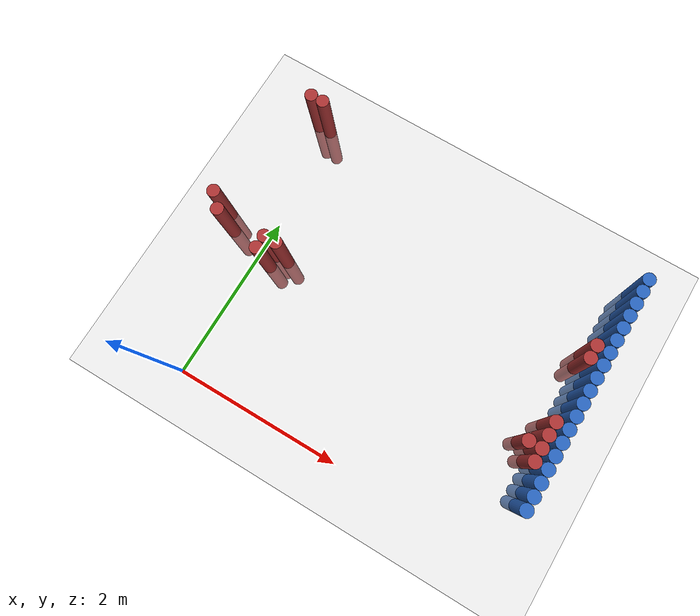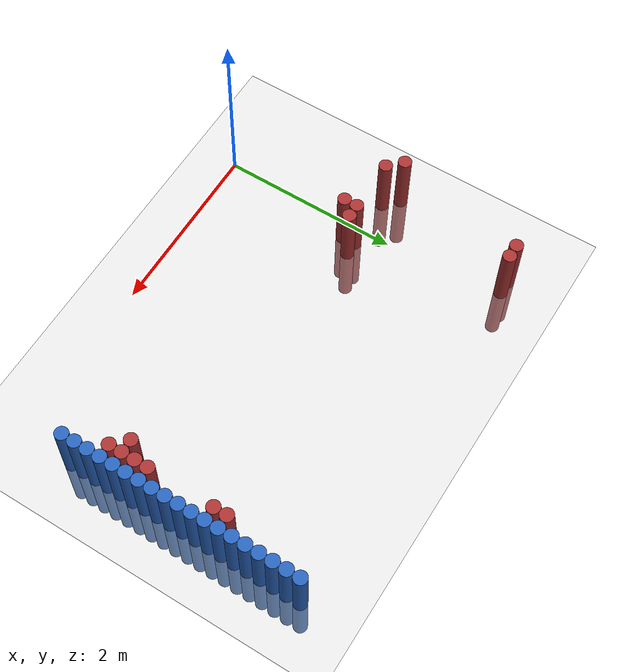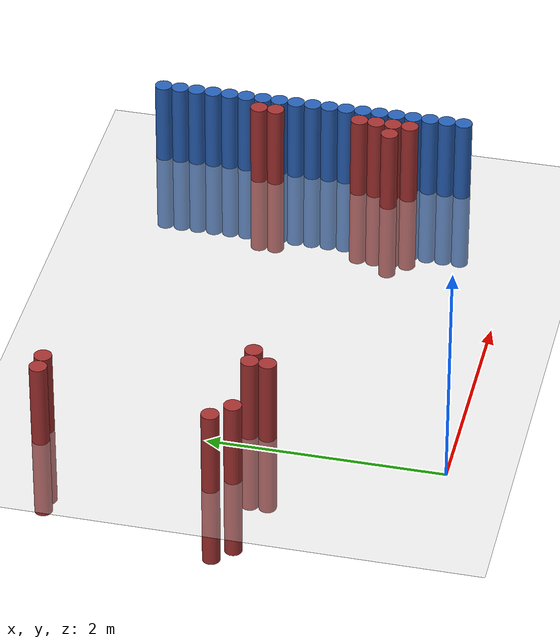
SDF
<sdf version="1.6">
 <world name="default">
  <model name="ground_plane">
   <static>1</static>
   <link name="link">
    <collision name="collision">
     <geometry><plane><normal>0 0 1</normal><size>100 100</size></plane></geometry>
     <surface><friction><ode><mu>100</mu><mu2>50</mu2></ode></friction></surface>
    </collision>
    <visual name="visual">
     <cast_shadows>0</cast_shadows>
     <geometry><plane><normal>0 0 1</normal><size>100 100</size></plane></geometry>
     <material>
      <script><uri>file://media/materials/scripts/gazebo.material</uri><name>Gazebo/Grey</name></script>
     </material>
    </visual>
   </link>
  </model>
  <model name="unit_cylinder_124">
   <static>1</static>
   <pose>3.925000 0.775000 0.000000 0.000000 0.000000 0.000000</pose>
   <link name="link">
    <inertial>
     <mass>1</mass>
     <inertia><ixx>0.145833</ixx><ixy>0</ixy><ixz>0</ixz><iyy>0.145833</iyy><iyz>0</iyz><izz>0.125</izz></inertia>
    </inertial>
    <collision name="collision">
     <geometry><cylinder><radius>0.075000</radius><length>1.5</length></cylinder></geometry>
    </collision>
    <visual name="visual">
     <geometry><cylinder><radius>0.075000</radius><length>1.5</length></cylinder></geometry>
     <material>
      <ambient>0.152000 0.379000 0.720000 1</ambient>
      <diffuse>0.152000 0.379000 0.720000 1</diffuse>
     </material>
     <material>
      <script><name>Gazebo/Grey</name><uri>file://media/materials/scripts/gazebo.material</uri></script>
     </material>
    </visual>
   </link>
  </model>
  <model name="unit_cylinder_126">
   <static>1</static>
   <pose>3.925000 0.925000 0.000000 0.000000 0.000000 0.000000</pose>
   <link name="link">
    <inertial>
     <mass>1</mass>
     <inertia><ixx>0.145833</ixx><ixy>0</ixy><ixz>0</ixz><iyy>0.145833</iyy><iyz>0</iyz><izz>0.125</izz></inertia>
    </inertial>
    <collision name="collision">
     <geometry><cylinder><radius>0.075000</radius><length>1.5</length></cylinder></geometry>
    </collision>
    <visual name="visual">
     <geometry><cylinder><radius>0.075000</radius><length>1.5</length></cylinder></geometry>
     <material>
      <ambient>0.152000 0.379000 0.720000 1</ambient>
      <diffuse>0.152000 0.379000 0.720000 1</diffuse>
     </material>
     <material>
      <script><name>Gazebo/Grey</name><uri>file://media/materials/scripts/gazebo.material</uri></script>
     </material>
    </visual>
   </link>
  </model>
  <model name="unit_cylinder_128">
   <static>1</static>
   <pose>3.925000 1.075000 0.000000 0.000000 0.000000 0.000000</pose>
   <link name="link">
    <inertial>
     <mass>1</mass>
     <inertia><ixx>0.145833</ixx><ixy>0</ixy><ixz>0</ixz><iyy>0.145833</iyy><iyz>0</iyz><izz>0.125</izz></inertia>
    </inertial>
    <collision name="collision">
     <geometry><cylinder><radius>0.075000</radius><length>1.5</length></cylinder></geometry>
    </collision>
    <visual name="visual">
     <geometry><cylinder><radius>0.075000</radius><length>1.5</length></cylinder></geometry>
     <material>
      <ambient>0.152000 0.379000 0.720000 1</ambient>
      <diffuse>0.152000 0.379000 0.720000 1</diffuse>
     </material>
     <material>
      <script><name>Gazebo/Grey</name><uri>file://media/materials/scripts/gazebo.material</uri></script>
     </material>
    </visual>
   </link>
  </model>
  <model name="unit_cylinder_130">
   <static>1</static>
   <pose>3.925000 1.225000 0.000000 0.000000 0.000000 0.000000</pose>
   <link name="link">
    <inertial>
     <mass>1</mass>
     <inertia><ixx>0.145833</ixx><ixy>0</ixy><ixz>0</ixz><iyy>0.145833</iyy><iyz>0</iyz><izz>0.125</izz></inertia>
    </inertial>
    <collision name="collision">
     <geometry><cylinder><radius>0.075000</radius><length>1.5</length></cylinder></geometry>
    </collision>
    <visual name="visual">
     <geometry><cylinder><radius>0.075000</radius><length>1.5</length></cylinder></geometry>
     <material>
      <ambient>0.152000 0.379000 0.720000 1</ambient>
      <diffuse>0.152000 0.379000 0.720000 1</diffuse>
     </material>
     <material>
      <script><name>Gazebo/Grey</name><uri>file://media/materials/scripts/gazebo.material</uri></script>
     </material>
    </visual>
   </link>
  </model>
  <model name="unit_cylinder_132">
   <static>1</static>
   <pose>3.925000 1.375000 0.000000 0.000000 0.000000 0.000000</pose>
   <link name="link">
    <inertial>
     <mass>1</mass>
     <inertia><ixx>0.145833</ixx><ixy>0</ixy><ixz>0</ixz><iyy>0.145833</iyy><iyz>0</iyz><izz>0.125</izz></inertia>
    </inertial>
    <collision name="collision">
     <geometry><cylinder><radius>0.075000</radius><length>1.5</length></cylinder></geometry>
    </collision>
    <visual name="visual">
     <geometry><cylinder><radius>0.075000</radius><length>1.5</length></cylinder></geometry>
     <material>
      <ambient>0.152000 0.379000 0.720000 1</ambient>
      <diffuse>0.152000 0.379000 0.720000 1</diffuse>
     </material>
     <material>
      <script><name>Gazebo/Grey</name><uri>file://media/materials/scripts/gazebo.material</uri></script>
     </material>
    </visual>
   </link>
  </model>
  <model name="unit_cylinder_134">
   <static>1</static>
   <pose>3.925000 1.525000 0.000000 0.000000 0.000000 0.000000</pose>
   <link name="link">
    <inertial>
     <mass>1</mass>
     <inertia><ixx>0.145833</ixx><ixy>0</ixy><ixz>0</ixz><iyy>0.145833</iyy><iyz>0</iyz><izz>0.125</izz></inertia>
    </inertial>
    <collision name="collision">
     <geometry><cylinder><radius>0.075000</radius><length>1.5</length></cylinder></geometry>
    </collision>
    <visual name="visual">
     <geometry><cylinder><radius>0.075000</radius><length>1.5</length></cylinder></geometry>
     <material>
      <ambient>0.152000 0.379000 0.720000 1</ambient>
      <diffuse>0.152000 0.379000 0.720000 1</diffuse>
     </material>
     <material>
      <script><name>Gazebo/Grey</name><uri>file://media/materials/scripts/gazebo.material</uri></script>
     </material>
    </visual>
   </link>
  </model>
  <model name="unit_cylinder_136">
   <static>1</static>
   <pose>3.925000 1.675000 0.000000 0.000000 0.000000 0.000000</pose>
   <link name="link">
    <inertial>
     <mass>1</mass>
     <inertia><ixx>0.145833</ixx><ixy>0</ixy><ixz>0</ixz><iyy>0.145833</iyy><iyz>0</iyz><izz>0.125</izz></inertia>
    </inertial>
    <collision name="collision">
     <geometry><cylinder><radius>0.075000</radius><length>1.5</length></cylinder></geometry>
    </collision>
    <visual name="visual">
     <geometry><cylinder><radius>0.075000</radius><length>1.5</length></cylinder></geometry>
     <material>
      <ambient>0.152000 0.379000 0.720000 1</ambient>
      <diffuse>0.152000 0.379000 0.720000 1</diffuse>
     </material>
     <material>
      <script><name>Gazebo/Grey</name><uri>file://media/materials/scripts/gazebo.material</uri></script>
     </material>
    </visual>
   </link>
  </model>
  <model name="unit_cylinder_138">
   <static>1</static>
   <pose>3.925000 1.825000 0.000000 0.000000 0.000000 0.000000</pose>
   <link name="link">
    <inertial>
     <mass>1</mass>
     <inertia><ixx>0.145833</ixx><ixy>0</ixy><ixz>0</ixz><iyy>0.145833</iyy><iyz>0</iyz><izz>0.125</izz></inertia>
    </inertial>
    <collision name="collision">
     <geometry><cylinder><radius>0.075000</radius><length>1.5</length></cylinder></geometry>
    </collision>
    <visual name="visual">
     <geometry><cylinder><radius>0.075000</radius><length>1.5</length></cylinder></geometry>
     <material>
      <ambient>0.152000 0.379000 0.720000 1</ambient>
      <diffuse>0.152000 0.379000 0.720000 1</diffuse>
     </material>
     <material>
      <script><name>Gazebo/Grey</name><uri>file://media/materials/scripts/gazebo.material</uri></script>
     </material>
    </visual>
   </link>
  </model>
  <model name="unit_cylinder_140">
   <static>1</static>
   <pose>3.925000 1.975000 0.000000 0.000000 0.000000 0.000000</pose>
   <link name="link">
    <inertial>
     <mass>1</mass>
     <inertia><ixx>0.145833</ixx><ixy>0</ixy><ixz>0</ixz><iyy>0.145833</iyy><iyz>0</iyz><izz>0.125</izz></inertia>
    </inertial>
    <collision name="collision">
     <geometry><cylinder><radius>0.075000</radius><length>1.5</length></cylinder></geometry>
    </collision>
    <visual name="visual">
     <geometry><cylinder><radius>0.075000</radius><length>1.5</length></cylinder></geometry>
     <material>
      <ambient>0.152000 0.379000 0.720000 1</ambient>
      <diffuse>0.152000 0.379000 0.720000 1</diffuse>
     </material>
     <material>
      <script><name>Gazebo/Grey</name><uri>file://media/materials/scripts/gazebo.material</uri></script>
     </material>
    </visual>
   </link>
  </model>
  <model name="unit_cylinder_142">
   <static>1</static>
   <pose>3.925000 2.125000 0.000000 0.000000 0.000000 0.000000</pose>
   <link name="link">
    <inertial>
     <mass>1</mass>
     <inertia><ixx>0.145833</ixx><ixy>0</ixy><ixz>0</ixz><iyy>0.145833</iyy><iyz>0</iyz><izz>0.125</izz></inertia>
    </inertial>
    <collision name="collision">
     <geometry><cylinder><radius>0.075000</radius><length>1.5</length></cylinder></geometry>
    </collision>
    <visual name="visual">
     <geometry><cylinder><radius>0.075000</radius><length>1.5</length></cylinder></geometry>
     <material>
      <ambient>0.152000 0.379000 0.720000 1</ambient>
      <diffuse>0.152000 0.379000 0.720000 1</diffuse>
     </material>
     <material>
      <script><name>Gazebo/Grey</name><uri>file://media/materials/scripts/gazebo.material</uri></script>
     </material>
    </visual>
   </link>
  </model>
  <model name="unit_cylinder_144">
   <static>1</static>
   <pose>3.925000 2.275000 0.000000 0.000000 0.000000 0.000000</pose>
   <link name="link">
    <inertial>
     <mass>1</mass>
     <inertia><ixx>0.145833</ixx><ixy>0</ixy><ixz>0</ixz><iyy>0.145833</iyy><iyz>0</iyz><izz>0.125</izz></inertia>
    </inertial>
    <collision name="collision">
     <geometry><cylinder><radius>0.075000</radius><length>1.5</length></cylinder></geometry>
    </collision>
    <visual name="visual">
     <geometry><cylinder><radius>0.075000</radius><length>1.5</length></cylinder></geometry>
     <material>
      <ambient>0.152000 0.379000 0.720000 1</ambient>
      <diffuse>0.152000 0.379000 0.720000 1</diffuse>
     </material>
     <material>
      <script><name>Gazebo/Grey</name><uri>file://media/materials/scripts/gazebo.material</uri></script>
     </material>
    </visual>
   </link>
  </model>
  <model name="unit_cylinder_146">
   <static>1</static>
   <pose>3.925000 2.425000 0.000000 0.000000 0.000000 0.000000</pose>
   <link name="link">
    <inertial>
     <mass>1</mass>
     <inertia><ixx>0.145833</ixx><ixy>0</ixy><ixz>0</ixz><iyy>0.145833</iyy><iyz>0</iyz><izz>0.125</izz></inertia>
    </inertial>
    <collision name="collision">
     <geometry><cylinder><radius>0.075000</radius><length>1.5</length></cylinder></geometry>
    </collision>
    <visual name="visual">
     <geometry><cylinder><radius>0.075000</radius><length>1.5</length></cylinder></geometry>
     <material>
      <ambient>0.152000 0.379000 0.720000 1</ambient>
      <diffuse>0.152000 0.379000 0.720000 1</diffuse>
     </material>
     <material>
      <script><name>Gazebo/Grey</name><uri>file://media/materials/scripts/gazebo.material</uri></script>
     </material>
    </visual>
   </link>
  </model>
  <model name="unit_cylinder_148">
   <static>1</static>
   <pose>3.925000 2.575000 0.000000 0.000000 0.000000 0.000000</pose>
   <link name="link">
    <inertial>
     <mass>1</mass>
     <inertia><ixx>0.145833</ixx><ixy>0</ixy><ixz>0</ixz><iyy>0.145833</iyy><iyz>0</iyz><izz>0.125</izz></inertia>
    </inertial>
    <collision name="collision">
     <geometry><cylinder><radius>0.075000</radius><length>1.5</length></cylinder></geometry>
    </collision>
    <visual name="visual">
     <geometry><cylinder><radius>0.075000</radius><length>1.5</length></cylinder></geometry>
     <material>
      <ambient>0.152000 0.379000 0.720000 1</ambient>
      <diffuse>0.152000 0.379000 0.720000 1</diffuse>
     </material>
     <material>
      <script><name>Gazebo/Grey</name><uri>file://media/materials/scripts/gazebo.material</uri></script>
     </material>
    </visual>
   </link>
  </model>
  <model name="unit_cylinder_150">
   <static>1</static>
   <pose>3.925000 2.725000 0.000000 0.000000 0.000000 0.000000</pose>
   <link name="link">
    <inertial>
     <mass>1</mass>
     <inertia><ixx>0.145833</ixx><ixy>0</ixy><ixz>0</ixz><iyy>0.145833</iyy><iyz>0</iyz><izz>0.125</izz></inertia>
    </inertial>
    <collision name="collision">
     <geometry><cylinder><radius>0.075000</radius><length>1.5</length></cylinder></geometry>
    </collision>
    <visual name="visual">
     <geometry><cylinder><radius>0.075000</radius><length>1.5</length></cylinder></geometry>
     <material>
      <ambient>0.152000 0.379000 0.720000 1</ambient>
      <diffuse>0.152000 0.379000 0.720000 1</diffuse>
     </material>
     <material>
      <script><name>Gazebo/Grey</name><uri>file://media/materials/scripts/gazebo.material</uri></script>
     </material>
    </visual>
   </link>
  </model>
  <model name="unit_cylinder_152">
   <static>1</static>
   <pose>3.925000 2.875000 0.000000 0.000000 0.000000 0.000000</pose>
   <link name="link">
    <inertial>
     <mass>1</mass>
     <inertia><ixx>0.145833</ixx><ixy>0</ixy><ixz>0</ixz><iyy>0.145833</iyy><iyz>0</iyz><izz>0.125</izz></inertia>
    </inertial>
    <collision name="collision">
     <geometry><cylinder><radius>0.075000</radius><length>1.5</length></cylinder></geometry>
    </collision>
    <visual name="visual">
     <geometry><cylinder><radius>0.075000</radius><length>1.5</length></cylinder></geometry>
     <material>
      <ambient>0.152000 0.379000 0.720000 1</ambient>
      <diffuse>0.152000 0.379000 0.720000 1</diffuse>
     </material>
     <material>
      <script><name>Gazebo/Grey</name><uri>file://media/materials/scripts/gazebo.material</uri></script>
     </material>
    </visual>
   </link>
  </model>
  <model name="unit_cylinder_154">
   <static>1</static>
   <pose>3.925000 3.025000 0.000000 0.000000 0.000000 0.000000</pose>
   <link name="link">
    <inertial>
     <mass>1</mass>
     <inertia><ixx>0.145833</ixx><ixy>0</ixy><ixz>0</ixz><iyy>0.145833</iyy><iyz>0</iyz><izz>0.125</izz></inertia>
    </inertial>
    <collision name="collision">
     <geometry><cylinder><radius>0.075000</radius><length>1.5</length></cylinder></geometry>
    </collision>
    <visual name="visual">
     <geometry><cylinder><radius>0.075000</radius><length>1.5</length></cylinder></geometry>
     <material>
      <ambient>0.152000 0.379000 0.720000 1</ambient>
      <diffuse>0.152000 0.379000 0.720000 1</diffuse>
     </material>
     <material>
      <script><name>Gazebo/Grey</name><uri>file://media/materials/scripts/gazebo.material</uri></script>
     </material>
    </visual>
   </link>
  </model>
  <model name="unit_cylinder_156">
   <static>1</static>
   <pose>3.925000 3.175000 0.000000 0.000000 0.000000 0.000000</pose>
   <link name="link">
    <inertial>
     <mass>1</mass>
     <inertia><ixx>0.145833</ixx><ixy>0</ixy><ixz>0</ixz><iyy>0.145833</iyy><iyz>0</iyz><izz>0.125</izz></inertia>
    </inertial>
    <collision name="collision">
     <geometry><cylinder><radius>0.075000</radius><length>1.5</length></cylinder></geometry>
    </collision>
    <visual name="visual">
     <geometry><cylinder><radius>0.075000</radius><length>1.5</length></cylinder></geometry>
     <material>
      <ambient>0.152000 0.379000 0.720000 1</ambient>
      <diffuse>0.152000 0.379000 0.720000 1</diffuse>
     </material>
     <material>
      <script><name>Gazebo/Grey</name><uri>file://media/materials/scripts/gazebo.material</uri></script>
     </material>
    </visual>
   </link>
  </model>
  <model name="unit_cylinder_158">
   <static>1</static>
   <pose>3.925000 3.325000 0.000000 0.000000 0.000000 0.000000</pose>
   <link name="link">
    <inertial>
     <mass>1</mass>
     <inertia><ixx>0.145833</ixx><ixy>0</ixy><ixz>0</ixz><iyy>0.145833</iyy><iyz>0</iyz><izz>0.125</izz></inertia>
    </inertial>
    <collision name="collision">
     <geometry><cylinder><radius>0.075000</radius><length>1.5</length></cylinder></geometry>
    </collision>
    <visual name="visual">
     <geometry><cylinder><radius>0.075000</radius><length>1.5</length></cylinder></geometry>
     <material>
      <ambient>0.152000 0.379000 0.720000 1</ambient>
      <diffuse>0.152000 0.379000 0.720000 1</diffuse>
     </material>
     <material>
      <script><name>Gazebo/Grey</name><uri>file://media/materials/scripts/gazebo.material</uri></script>
     </material>
    </visual>
   </link>
  </model>
  <model name="unit_cylinder_301">
   <static>1</static>
   <pose>-0.575000 1.825000 0.000000 0.000000 0.000000 0.000000</pose>
   <link name="link">
    <inertial>
     <mass>1</mass>
     <inertia><ixx>0.145833</ixx><ixy>0</ixy><ixz>0</ixz><iyy>0.145833</iyy><iyz>0</iyz><izz>0.125</izz></inertia>
    </inertial>
    <collision name="collision">
     <geometry><cylinder><radius>0.075000</radius><length>1.5</length></cylinder></geometry>
    </collision>
    <visual name="visual">
     <geometry><cylinder><radius>0.075000</radius><length>1.5</length></cylinder></geometry>
     <material>
      <ambient>0.648000 0.192000 0.192000 1</ambient>
      <diffuse>0.648000 0.192000 0.192000 1</diffuse>
     </material>
     <material>
      <script><name>Gazebo/Grey</name><uri>file://media/materials/scripts/gazebo.material</uri></script>
     </material>
    </visual>
   </link>
  </model>
  <model name="unit_cylinder_302">
   <static>1</static>
   <pose>-0.425000 1.675000 0.000000 0.000000 0.000000 0.000000</pose>
   <link name="link">
    <inertial>
     <mass>1</mass>
     <inertia><ixx>0.145833</ixx><ixy>0</ixy><ixz>0</ixz><iyy>0.145833</iyy><iyz>0</iyz><izz>0.125</izz></inertia>
    </inertial>
    <collision name="collision">
     <geometry><cylinder><radius>0.075000</radius><length>1.5</length></cylinder></geometry>
    </collision>
    <visual name="visual">
     <geometry><cylinder><radius>0.075000</radius><length>1.5</length></cylinder></geometry>
     <material>
      <ambient>0.648000 0.192000 0.192000 1</ambient>
      <diffuse>0.648000 0.192000 0.192000 1</diffuse>
     </material>
     <material>
      <script><name>Gazebo/Grey</name><uri>file://media/materials/scripts/gazebo.material</uri></script>
     </material>
    </visual>
   </link>
  </model>
  <model name="unit_cylinder_303">
   <static>1</static>
   <pose>-0.275000 3.325000 0.000000 0.000000 0.000000 0.000000</pose>
   <link name="link">
    <inertial>
     <mass>1</mass>
     <inertia><ixx>0.145833</ixx><ixy>0</ixy><ixz>0</ixz><iyy>0.145833</iyy><iyz>0</iyz><izz>0.125</izz></inertia>
    </inertial>
    <collision name="collision">
     <geometry><cylinder><radius>0.075000</radius><length>1.5</length></cylinder></geometry>
    </collision>
    <visual name="visual">
     <geometry><cylinder><radius>0.075000</radius><length>1.5</length></cylinder></geometry>
     <material>
      <ambient>0.648000 0.192000 0.192000 1</ambient>
      <diffuse>0.648000 0.192000 0.192000 1</diffuse>
     </material>
     <material>
      <script><name>Gazebo/Grey</name><uri>file://media/materials/scripts/gazebo.material</uri></script>
     </material>
    </visual>
   </link>
  </model>
  <model name="unit_cylinder_305">
   <static>1</static>
   <pose>-0.125000 3.325000 0.000000 0.000000 0.000000 0.000000</pose>
   <link name="link">
    <inertial>
     <mass>1</mass>
     <inertia><ixx>0.145833</ixx><ixy>0</ixy><ixz>0</ixz><iyy>0.145833</iyy><iyz>0</iyz><izz>0.125</izz></inertia>
    </inertial>
    <collision name="collision">
     <geometry><cylinder><radius>0.075000</radius><length>1.5</length></cylinder></geometry>
    </collision>
    <visual name="visual">
     <geometry><cylinder><radius>0.075000</radius><length>1.5</length></cylinder></geometry>
     <material>
      <ambient>0.648000 0.192000 0.192000 1</ambient>
      <diffuse>0.648000 0.192000 0.192000 1</diffuse>
     </material>
     <material>
      <script><name>Gazebo/Grey</name><uri>file://media/materials/scripts/gazebo.material</uri></script>
     </material>
    </visual>
   </link>
  </model>
  <model name="unit_cylinder_310">
   <static>1</static>
   <pose>0.175000 1.525000 0.000000 0.000000 0.000000 0.000000</pose>
   <link name="link">
    <inertial>
     <mass>1</mass>
     <inertia><ixx>0.145833</ixx><ixy>0</ixy><ixz>0</ixz><iyy>0.145833</iyy><iyz>0</iyz><izz>0.125</izz></inertia>
    </inertial>
    <collision name="collision">
     <geometry><cylinder><radius>0.075000</radius><length>1.5</length></cylinder></geometry>
    </collision>
    <visual name="visual">
     <geometry><cylinder><radius>0.075000</radius><length>1.5</length></cylinder></geometry>
     <material>
      <ambient>0.648000 0.192000 0.192000 1</ambient>
      <diffuse>0.648000 0.192000 0.192000 1</diffuse>
     </material>
     <material>
      <script><name>Gazebo/Grey</name><uri>file://media/materials/scripts/gazebo.material</uri></script>
     </material>
    </visual>
   </link>
  </model>
  <model name="unit_cylinder_311">
   <static>1</static>
   <pose>0.175000 1.675000 0.000000 0.000000 0.000000 0.000000</pose>
   <link name="link">
    <inertial>
     <mass>1</mass>
     <inertia><ixx>0.145833</ixx><ixy>0</ixy><ixz>0</ixz><iyy>0.145833</iyy><iyz>0</iyz><izz>0.125</izz></inertia>
    </inertial>
    <collision name="collision">
     <geometry><cylinder><radius>0.075000</radius><length>1.5</length></cylinder></geometry>
    </collision>
    <visual name="visual">
     <geometry><cylinder><radius>0.075000</radius><length>1.5</length></cylinder></geometry>
     <material>
      <ambient>0.648000 0.192000 0.192000 1</ambient>
      <diffuse>0.648000 0.192000 0.192000 1</diffuse>
     </material>
     <material>
      <script><name>Gazebo/Grey</name><uri>file://media/materials/scripts/gazebo.material</uri></script>
     </material>
    </visual>
   </link>
  </model>
  <model name="unit_cylinder_312">
   <static>1</static>
   <pose>0.325000 1.675000 0.000000 0.000000 0.000000 0.000000</pose>
   <link name="link">
    <inertial>
     <mass>1</mass>
     <inertia><ixx>0.145833</ixx><ixy>0</ixy><ixz>0</ixz><iyy>0.145833</iyy><iyz>0</iyz><izz>0.125</izz></inertia>
    </inertial>
    <collision name="collision">
     <geometry><cylinder><radius>0.075000</radius><length>1.5</length></cylinder></geometry>
    </collision>
    <visual name="visual">
     <geometry><cylinder><radius>0.075000</radius><length>1.5</length></cylinder></geometry>
     <material>
      <ambient>0.648000 0.192000 0.192000 1</ambient>
      <diffuse>0.648000 0.192000 0.192000 1</diffuse>
     </material>
     <material>
      <script><name>Gazebo/Grey</name><uri>file://media/materials/scripts/gazebo.material</uri></script>
     </material>
    </visual>
   </link>
  </model>
  <model name="unit_cylinder_327">
   <static>1</static>
   <pose>3.625000 1.225000 0.000000 0.000000 0.000000 0.000000</pose>
   <link name="link">
    <inertial>
     <mass>1</mass>
     <inertia><ixx>0.145833</ixx><ixy>0</ixy><ixz>0</ixz><iyy>0.145833</iyy><iyz>0</iyz><izz>0.125</izz></inertia>
    </inertial>
    <collision name="collision">
     <geometry><cylinder><radius>0.075000</radius><length>1.5</length></cylinder></geometry>
    </collision>
    <visual name="visual">
     <geometry><cylinder><radius>0.075000</radius><length>1.5</length></cylinder></geometry>
     <material>
      <ambient>0.648000 0.192000 0.192000 1</ambient>
      <diffuse>0.648000 0.192000 0.192000 1</diffuse>
     </material>
     <material>
      <script><name>Gazebo/Grey</name><uri>file://media/materials/scripts/gazebo.material</uri></script>
     </material>
    </visual>
   </link>
  </model>
  <model name="unit_cylinder_338">
   <static>1</static>
   <pose>3.775000 1.075000 0.000000 0.000000 0.000000 0.000000</pose>
   <link name="link">
    <inertial>
     <mass>1</mass>
     <inertia><ixx>0.145833</ixx><ixy>0</ixy><ixz>0</ixz><iyy>0.145833</iyy><iyz>0</iyz><izz>0.125</izz></inertia>
    </inertial>
    <collision name="collision">
     <geometry><cylinder><radius>0.075000</radius><length>1.5</length></cylinder></geometry>
    </collision>
    <visual name="visual">
     <geometry><cylinder><radius>0.075000</radius><length>1.5</length></cylinder></geometry>
     <material>
      <ambient>0.648000 0.192000 0.192000 1</ambient>
      <diffuse>0.648000 0.192000 0.192000 1</diffuse>
     </material>
     <material>
      <script><name>Gazebo/Grey</name><uri>file://media/materials/scripts/gazebo.material</uri></script>
     </material>
    </visual>
   </link>
  </model>
  <model name="unit_cylinder_339">
   <static>1</static>
   <pose>3.775000 1.225000 0.000000 0.000000 0.000000 0.000000</pose>
   <link name="link">
    <inertial>
     <mass>1</mass>
     <inertia><ixx>0.145833</ixx><ixy>0</ixy><ixz>0</ixz><iyy>0.145833</iyy><iyz>0</iyz><izz>0.125</izz></inertia>
    </inertial>
    <collision name="collision">
     <geometry><cylinder><radius>0.075000</radius><length>1.5</length></cylinder></geometry>
    </collision>
    <visual name="visual">
     <geometry><cylinder><radius>0.075000</radius><length>1.5</length></cylinder></geometry>
     <material>
      <ambient>0.648000 0.192000 0.192000 1</ambient>
      <diffuse>0.648000 0.192000 0.192000 1</diffuse>
     </material>
     <material>
      <script><name>Gazebo/Grey</name><uri>file://media/materials/scripts/gazebo.material</uri></script>
     </material>
    </visual>
   </link>
  </model>
  <model name="unit_cylinder_340">
   <static>1</static>
   <pose>3.775000 1.375000 0.000000 0.000000 0.000000 0.000000</pose>
   <link name="link">
    <inertial>
     <mass>1</mass>
     <inertia><ixx>0.145833</ixx><ixy>0</ixy><ixz>0</ixz><iyy>0.145833</iyy><iyz>0</iyz><izz>0.125</izz></inertia>
    </inertial>
    <collision name="collision">
     <geometry><cylinder><radius>0.075000</radius><length>1.5</length></cylinder></geometry>
    </collision>
    <visual name="visual">
     <geometry><cylinder><radius>0.075000</radius><length>1.5</length></cylinder></geometry>
     <material>
      <ambient>0.648000 0.192000 0.192000 1</ambient>
      <diffuse>0.648000 0.192000 0.192000 1</diffuse>
     </material>
     <material>
      <script><name>Gazebo/Grey</name><uri>file://media/materials/scripts/gazebo.material</uri></script>
     </material>
    </visual>
   </link>
  </model>
  <model name="unit_cylinder_341">
   <static>1</static>
   <pose>3.775000 1.525000 0.000000 0.000000 0.000000 0.000000</pose>
   <link name="link">
    <inertial>
     <mass>1</mass>
     <inertia><ixx>0.145833</ixx><ixy>0</ixy><ixz>0</ixz><iyy>0.145833</iyy><iyz>0</iyz><izz>0.125</izz></inertia>
    </inertial>
    <collision name="collision">
     <geometry><cylinder><radius>0.075000</radius><length>1.5</length></cylinder></geometry>
    </collision>
    <visual name="visual">
     <geometry><cylinder><radius>0.075000</radius><length>1.5</length></cylinder></geometry>
     <material>
      <ambient>0.648000 0.192000 0.192000 1</ambient>
      <diffuse>0.648000 0.192000 0.192000 1</diffuse>
     </material>
     <material>
      <script><name>Gazebo/Grey</name><uri>file://media/materials/scripts/gazebo.material</uri></script>
     </material>
    </visual>
   </link>
  </model>
  <model name="unit_cylinder_342">
   <static>1</static>
   <pose>3.775000 2.275000 0.000000 0.000000 0.000000 0.000000</pose>
   <link name="link">
    <inertial>
     <mass>1</mass>
     <inertia><ixx>0.145833</ixx><ixy>0</ixy><ixz>0</ixz><iyy>0.145833</iyy><iyz>0</iyz><izz>0.125</izz></inertia>
    </inertial>
    <collision name="collision">
     <geometry><cylinder><radius>0.075000</radius><length>1.5</length></cylinder></geometry>
    </collision>
    <visual name="visual">
     <geometry><cylinder><radius>0.075000</radius><length>1.5</length></cylinder></geometry>
     <material>
      <ambient>0.648000 0.192000 0.192000 1</ambient>
      <diffuse>0.648000 0.192000 0.192000 1</diffuse>
     </material>
     <material>
      <script><name>Gazebo/Grey</name><uri>file://media/materials/scripts/gazebo.material</uri></script>
     </material>
    </visual>
   </link>
  </model>
  <model name="unit_cylinder_343">
   <static>1</static>
   <pose>3.775000 2.425000 0.000000 0.000000 0.000000 0.000000</pose>
   <link name="link">
    <inertial>
     <mass>1</mass>
     <inertia><ixx>0.145833</ixx><ixy>0</ixy><ixz>0</ixz><iyy>0.145833</iyy><iyz>0</iyz><izz>0.125</izz></inertia>
    </inertial>
    <collision name="collision">
     <geometry><cylinder><radius>0.075000</radius><length>1.5</length></cylinder></geometry>
    </collision>
    <visual name="visual">
     <geometry><cylinder><radius>0.075000</radius><length>1.5</length></cylinder></geometry>
     <material>
      <ambient>0.648000 0.192000 0.192000 1</ambient>
      <diffuse>0.648000 0.192000 0.192000 1</diffuse>
     </material>
     <material>
      <script><name>Gazebo/Grey</name><uri>file://media/materials/scripts/gazebo.material</uri></script>
     </material>
    </visual>
   </link>
  </model>
  <model name="unit_cylinder_364">
   <static>1</static>
   <pose>3.925000 0.625000 0.000000 0.000000 0.000000 0.000000</pose>
   <link name="link">
    <inertial>
     <mass>1</mass>
     <inertia><ixx>0.145833</ixx><ixy>0</ixy><ixz>0</ixz><iyy>0.145833</iyy><iyz>0</iyz><izz>0.125</izz></inertia>
    </inertial>
    <collision name="collision">
     <geometry><cylinder><radius>0.075000</radius><length>1.5</length></cylinder></geometry>
    </collision>
    <visual name="visual">
     <geometry><cylinder><radius>0.075000</radius><length>1.5</length></cylinder></geometry>
     <material>
      <ambient>0.152000 0.379000 0.720000 1</ambient>
      <diffuse>0.152000 0.379000 0.720000 1</diffuse>
     </material>
     <material>
      <script><name>Gazebo/Grey</name><uri>file://media/materials/scripts/gazebo.material</uri></script>
     </material>
    </visual>
   </link>
  </model>
  <model name="unit_cylinder_365">
   <static>1</static>
   <pose>3.925000 0.775000 0.000000 0.000000 0.000000 0.000000</pose>
   <link name="link">
    <inertial>
     <mass>1</mass>
     <inertia><ixx>0.145833</ixx><ixy>0</ixy><ixz>0</ixz><iyy>0.145833</iyy><iyz>0</iyz><izz>0.125</izz></inertia>
    </inertial>
    <collision name="collision">
     <geometry><cylinder><radius>0.075000</radius><length>1.5</length></cylinder></geometry>
    </collision>
    <visual name="visual">
     <geometry><cylinder><radius>0.075000</radius><length>1.5</length></cylinder></geometry>
     <material>
      <ambient>0.152000 0.379000 0.720000 1</ambient>
      <diffuse>0.152000 0.379000 0.720000 1</diffuse>
     </material>
     <material>
      <script><name>Gazebo/Grey</name><uri>file://media/materials/scripts/gazebo.material</uri></script>
     </material>
    </visual>
   </link>
  </model>
  <model name="unit_cylinder_366">
   <static>1</static>
   <pose>3.925000 0.925000 0.000000 0.000000 0.000000 0.000000</pose>
   <link name="link">
    <inertial>
     <mass>1</mass>
     <inertia><ixx>0.145833</ixx><ixy>0</ixy><ixz>0</ixz><iyy>0.145833</iyy><iyz>0</iyz><izz>0.125</izz></inertia>
    </inertial>
    <collision name="collision">
     <geometry><cylinder><radius>0.075000</radius><length>1.5</length></cylinder></geometry>
    </collision>
    <visual name="visual">
     <geometry><cylinder><radius>0.075000</radius><length>1.5</length></cylinder></geometry>
     <material>
      <ambient>0.152000 0.379000 0.720000 1</ambient>
      <diffuse>0.152000 0.379000 0.720000 1</diffuse>
     </material>
     <material>
      <script><name>Gazebo/Grey</name><uri>file://media/materials/scripts/gazebo.material</uri></script>
     </material>
    </visual>
   </link>
  </model>
  <model name="unit_cylinder_367">
   <static>1</static>
   <pose>3.925000 1.075000 0.000000 0.000000 0.000000 0.000000</pose>
   <link name="link">
    <inertial>
     <mass>1</mass>
     <inertia><ixx>0.145833</ixx><ixy>0</ixy><ixz>0</ixz><iyy>0.145833</iyy><iyz>0</iyz><izz>0.125</izz></inertia>
    </inertial>
    <collision name="collision">
     <geometry><cylinder><radius>0.075000</radius><length>1.5</length></cylinder></geometry>
    </collision>
    <visual name="visual">
     <geometry><cylinder><radius>0.075000</radius><length>1.5</length></cylinder></geometry>
     <material>
      <ambient>0.152000 0.379000 0.720000 1</ambient>
      <diffuse>0.152000 0.379000 0.720000 1</diffuse>
     </material>
     <material>
      <script><name>Gazebo/Grey</name><uri>file://media/materials/scripts/gazebo.material</uri></script>
     </material>
    </visual>
   </link>
  </model>
  <model name="unit_cylinder_368">
   <static>1</static>
   <pose>3.925000 1.225000 0.000000 0.000000 0.000000 0.000000</pose>
   <link name="link">
    <inertial>
     <mass>1</mass>
     <inertia><ixx>0.145833</ixx><ixy>0</ixy><ixz>0</ixz><iyy>0.145833</iyy><iyz>0</iyz><izz>0.125</izz></inertia>
    </inertial>
    <collision name="collision">
     <geometry><cylinder><radius>0.075000</radius><length>1.5</length></cylinder></geometry>
    </collision>
    <visual name="visual">
     <geometry><cylinder><radius>0.075000</radius><length>1.5</length></cylinder></geometry>
     <material>
      <ambient>0.152000 0.379000 0.720000 1</ambient>
      <diffuse>0.152000 0.379000 0.720000 1</diffuse>
     </material>
     <material>
      <script><name>Gazebo/Grey</name><uri>file://media/materials/scripts/gazebo.material</uri></script>
     </material>
    </visual>
   </link>
  </model>
  <model name="unit_cylinder_369">
   <static>1</static>
   <pose>3.925000 1.375000 0.000000 0.000000 0.000000 0.000000</pose>
   <link name="link">
    <inertial>
     <mass>1</mass>
     <inertia><ixx>0.145833</ixx><ixy>0</ixy><ixz>0</ixz><iyy>0.145833</iyy><iyz>0</iyz><izz>0.125</izz></inertia>
    </inertial>
    <collision name="collision">
     <geometry><cylinder><radius>0.075000</radius><length>1.5</length></cylinder></geometry>
    </collision>
    <visual name="visual">
     <geometry><cylinder><radius>0.075000</radius><length>1.5</length></cylinder></geometry>
     <material>
      <ambient>0.152000 0.379000 0.720000 1</ambient>
      <diffuse>0.152000 0.379000 0.720000 1</diffuse>
     </material>
     <material>
      <script><name>Gazebo/Grey</name><uri>file://media/materials/scripts/gazebo.material</uri></script>
     </material>
    </visual>
   </link>
  </model>
  <model name="unit_cylinder_370">
   <static>1</static>
   <pose>3.925000 1.525000 0.000000 0.000000 0.000000 0.000000</pose>
   <link name="link">
    <inertial>
     <mass>1</mass>
     <inertia><ixx>0.145833</ixx><ixy>0</ixy><ixz>0</ixz><iyy>0.145833</iyy><iyz>0</iyz><izz>0.125</izz></inertia>
    </inertial>
    <collision name="collision">
     <geometry><cylinder><radius>0.075000</radius><length>1.5</length></cylinder></geometry>
    </collision>
    <visual name="visual">
     <geometry><cylinder><radius>0.075000</radius><length>1.5</length></cylinder></geometry>
     <material>
      <ambient>0.152000 0.379000 0.720000 1</ambient>
      <diffuse>0.152000 0.379000 0.720000 1</diffuse>
     </material>
     <material>
      <script><name>Gazebo/Grey</name><uri>file://media/materials/scripts/gazebo.material</uri></script>
     </material>
    </visual>
   </link>
  </model>
  <model name="unit_cylinder_371">
   <static>1</static>
   <pose>3.925000 1.675000 0.000000 0.000000 0.000000 0.000000</pose>
   <link name="link">
    <inertial>
     <mass>1</mass>
     <inertia><ixx>0.145833</ixx><ixy>0</ixy><ixz>0</ixz><iyy>0.145833</iyy><iyz>0</iyz><izz>0.125</izz></inertia>
    </inertial>
    <collision name="collision">
     <geometry><cylinder><radius>0.075000</radius><length>1.5</length></cylinder></geometry>
    </collision>
    <visual name="visual">
     <geometry><cylinder><radius>0.075000</radius><length>1.5</length></cylinder></geometry>
     <material>
      <ambient>0.152000 0.379000 0.720000 1</ambient>
      <diffuse>0.152000 0.379000 0.720000 1</diffuse>
     </material>
     <material>
      <script><name>Gazebo/Grey</name><uri>file://media/materials/scripts/gazebo.material</uri></script>
     </material>
    </visual>
   </link>
  </model>
  <model name="unit_cylinder_372">
   <static>1</static>
   <pose>3.925000 1.825000 0.000000 0.000000 0.000000 0.000000</pose>
   <link name="link">
    <inertial>
     <mass>1</mass>
     <inertia><ixx>0.145833</ixx><ixy>0</ixy><ixz>0</ixz><iyy>0.145833</iyy><iyz>0</iyz><izz>0.125</izz></inertia>
    </inertial>
    <collision name="collision">
     <geometry><cylinder><radius>0.075000</radius><length>1.5</length></cylinder></geometry>
    </collision>
    <visual name="visual">
     <geometry><cylinder><radius>0.075000</radius><length>1.5</length></cylinder></geometry>
     <material>
      <ambient>0.152000 0.379000 0.720000 1</ambient>
      <diffuse>0.152000 0.379000 0.720000 1</diffuse>
     </material>
     <material>
      <script><name>Gazebo/Grey</name><uri>file://media/materials/scripts/gazebo.material</uri></script>
     </material>
    </visual>
   </link>
  </model>
  <model name="unit_cylinder_373">
   <static>1</static>
   <pose>3.925000 1.975000 0.000000 0.000000 0.000000 0.000000</pose>
   <link name="link">
    <inertial>
     <mass>1</mass>
     <inertia><ixx>0.145833</ixx><ixy>0</ixy><ixz>0</ixz><iyy>0.145833</iyy><iyz>0</iyz><izz>0.125</izz></inertia>
    </inertial>
    <collision name="collision">
     <geometry><cylinder><radius>0.075000</radius><length>1.5</length></cylinder></geometry>
    </collision>
    <visual name="visual">
     <geometry><cylinder><radius>0.075000</radius><length>1.5</length></cylinder></geometry>
     <material>
      <ambient>0.152000 0.379000 0.720000 1</ambient>
      <diffuse>0.152000 0.379000 0.720000 1</diffuse>
     </material>
     <material>
      <script><name>Gazebo/Grey</name><uri>file://media/materials/scripts/gazebo.material</uri></script>
     </material>
    </visual>
   </link>
  </model>
  <model name="unit_cylinder_374">
   <static>1</static>
   <pose>3.925000 2.125000 0.000000 0.000000 0.000000 0.000000</pose>
   <link name="link">
    <inertial>
     <mass>1</mass>
     <inertia><ixx>0.145833</ixx><ixy>0</ixy><ixz>0</ixz><iyy>0.145833</iyy><iyz>0</iyz><izz>0.125</izz></inertia>
    </inertial>
    <collision name="collision">
     <geometry><cylinder><radius>0.075000</radius><length>1.5</length></cylinder></geometry>
    </collision>
    <visual name="visual">
     <geometry><cylinder><radius>0.075000</radius><length>1.5</length></cylinder></geometry>
     <material>
      <ambient>0.152000 0.379000 0.720000 1</ambient>
      <diffuse>0.152000 0.379000 0.720000 1</diffuse>
     </material>
     <material>
      <script><name>Gazebo/Grey</name><uri>file://media/materials/scripts/gazebo.material</uri></script>
     </material>
    </visual>
   </link>
  </model>
  <model name="unit_cylinder_375">
   <static>1</static>
   <pose>3.925000 2.275000 0.000000 0.000000 0.000000 0.000000</pose>
   <link name="link">
    <inertial>
     <mass>1</mass>
     <inertia><ixx>0.145833</ixx><ixy>0</ixy><ixz>0</ixz><iyy>0.145833</iyy><iyz>0</iyz><izz>0.125</izz></inertia>
    </inertial>
    <collision name="collision">
     <geometry><cylinder><radius>0.075000</radius><length>1.5</length></cylinder></geometry>
    </collision>
    <visual name="visual">
     <geometry><cylinder><radius>0.075000</radius><length>1.5</length></cylinder></geometry>
     <material>
      <ambient>0.152000 0.379000 0.720000 1</ambient>
      <diffuse>0.152000 0.379000 0.720000 1</diffuse>
     </material>
     <material>
      <script><name>Gazebo/Grey</name><uri>file://media/materials/scripts/gazebo.material</uri></script>
     </material>
    </visual>
   </link>
  </model>
  <model name="unit_cylinder_376">
   <static>1</static>
   <pose>3.925000 2.425000 0.000000 0.000000 0.000000 0.000000</pose>
   <link name="link">
    <inertial>
     <mass>1</mass>
     <inertia><ixx>0.145833</ixx><ixy>0</ixy><ixz>0</ixz><iyy>0.145833</iyy><iyz>0</iyz><izz>0.125</izz></inertia>
    </inertial>
    <collision name="collision">
     <geometry><cylinder><radius>0.075000</radius><length>1.5</length></cylinder></geometry>
    </collision>
    <visual name="visual">
     <geometry><cylinder><radius>0.075000</radius><length>1.5</length></cylinder></geometry>
     <material>
      <ambient>0.152000 0.379000 0.720000 1</ambient>
      <diffuse>0.152000 0.379000 0.720000 1</diffuse>
     </material>
     <material>
      <script><name>Gazebo/Grey</name><uri>file://media/materials/scripts/gazebo.material</uri></script>
     </material>
    </visual>
   </link>
  </model>
  <model name="unit_cylinder_377">
   <static>1</static>
   <pose>3.925000 2.575000 0.000000 0.000000 0.000000 0.000000</pose>
   <link name="link">
    <inertial>
     <mass>1</mass>
     <inertia><ixx>0.145833</ixx><ixy>0</ixy><ixz>0</ixz><iyy>0.145833</iyy><iyz>0</iyz><izz>0.125</izz></inertia>
    </inertial>
    <collision name="collision">
     <geometry><cylinder><radius>0.075000</radius><length>1.5</length></cylinder></geometry>
    </collision>
    <visual name="visual">
     <geometry><cylinder><radius>0.075000</radius><length>1.5</length></cylinder></geometry>
     <material>
      <ambient>0.152000 0.379000 0.720000 1</ambient>
      <diffuse>0.152000 0.379000 0.720000 1</diffuse>
     </material>
     <material>
      <script><name>Gazebo/Grey</name><uri>file://media/materials/scripts/gazebo.material</uri></script>
     </material>
    </visual>
   </link>
  </model>
  <model name="unit_cylinder_378">
   <static>1</static>
   <pose>3.925000 2.725000 0.000000 0.000000 0.000000 0.000000</pose>
   <link name="link">
    <inertial>
     <mass>1</mass>
     <inertia><ixx>0.145833</ixx><ixy>0</ixy><ixz>0</ixz><iyy>0.145833</iyy><iyz>0</iyz><izz>0.125</izz></inertia>
    </inertial>
    <collision name="collision">
     <geometry><cylinder><radius>0.075000</radius><length>1.5</length></cylinder></geometry>
    </collision>
    <visual name="visual">
     <geometry><cylinder><radius>0.075000</radius><length>1.5</length></cylinder></geometry>
     <material>
      <ambient>0.152000 0.379000 0.720000 1</ambient>
      <diffuse>0.152000 0.379000 0.720000 1</diffuse>
     </material>
     <material>
      <script><name>Gazebo/Grey</name><uri>file://media/materials/scripts/gazebo.material</uri></script>
     </material>
    </visual>
   </link>
  </model>
  <model name="unit_cylinder_379">
   <static>1</static>
   <pose>3.925000 2.875000 0.000000 0.000000 0.000000 0.000000</pose>
   <link name="link">
    <inertial>
     <mass>1</mass>
     <inertia><ixx>0.145833</ixx><ixy>0</ixy><ixz>0</ixz><iyy>0.145833</iyy><iyz>0</iyz><izz>0.125</izz></inertia>
    </inertial>
    <collision name="collision">
     <geometry><cylinder><radius>0.075000</radius><length>1.5</length></cylinder></geometry>
    </collision>
    <visual name="visual">
     <geometry><cylinder><radius>0.075000</radius><length>1.5</length></cylinder></geometry>
     <material>
      <ambient>0.152000 0.379000 0.720000 1</ambient>
      <diffuse>0.152000 0.379000 0.720000 1</diffuse>
     </material>
     <material>
      <script><name>Gazebo/Grey</name><uri>file://media/materials/scripts/gazebo.material</uri></script>
     </material>
    </visual>
   </link>
  </model>
  <model name="unit_cylinder_380">
   <static>1</static>
   <pose>3.925000 3.025000 0.000000 0.000000 0.000000 0.000000</pose>
   <link name="link">
    <inertial>
     <mass>1</mass>
     <inertia><ixx>0.145833</ixx><ixy>0</ixy><ixz>0</ixz><iyy>0.145833</iyy><iyz>0</iyz><izz>0.125</izz></inertia>
    </inertial>
    <collision name="collision">
     <geometry><cylinder><radius>0.075000</radius><length>1.5</length></cylinder></geometry>
    </collision>
    <visual name="visual">
     <geometry><cylinder><radius>0.075000</radius><length>1.5</length></cylinder></geometry>
     <material>
      <ambient>0.152000 0.379000 0.720000 1</ambient>
      <diffuse>0.152000 0.379000 0.720000 1</diffuse>
     </material>
     <material>
      <script><name>Gazebo/Grey</name><uri>file://media/materials/scripts/gazebo.material</uri></script>
     </material>
    </visual>
   </link>
  </model>
  <model name="unit_cylinder_381">
   <static>1</static>
   <pose>3.925000 3.175000 0.000000 0.000000 0.000000 0.000000</pose>
   <link name="link">
    <inertial>
     <mass>1</mass>
     <inertia><ixx>0.145833</ixx><ixy>0</ixy><ixz>0</ixz><iyy>0.145833</iyy><iyz>0</iyz><izz>0.125</izz></inertia>
    </inertial>
    <collision name="collision">
     <geometry><cylinder><radius>0.075000</radius><length>1.5</length></cylinder></geometry>
    </collision>
    <visual name="visual">
     <geometry><cylinder><radius>0.075000</radius><length>1.5</length></cylinder></geometry>
     <material>
      <ambient>0.152000 0.379000 0.720000 1</ambient>
      <diffuse>0.152000 0.379000 0.720000 1</diffuse>
     </material>
     <material>
      <script><name>Gazebo/Grey</name><uri>file://media/materials/scripts/gazebo.material</uri></script>
     </material>
    </visual>
   </link>
  </model>
 </world>
</sdf>
